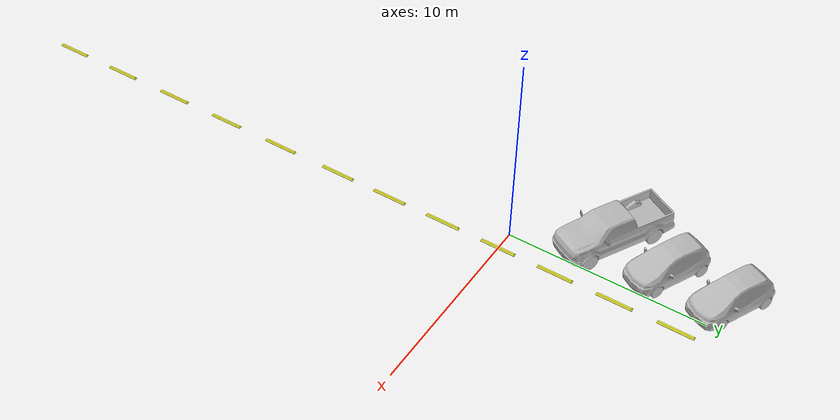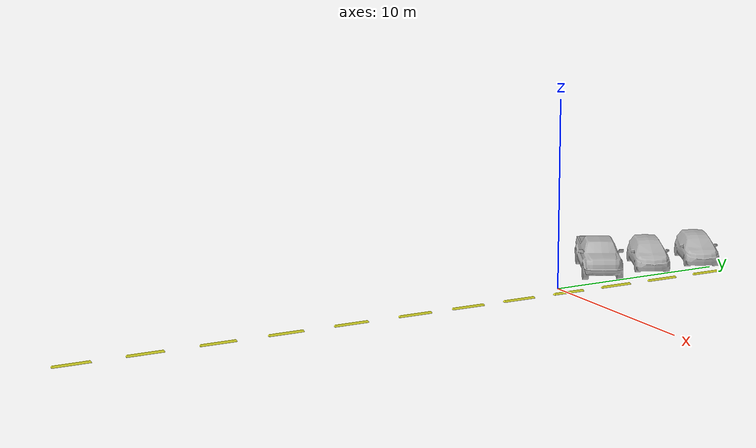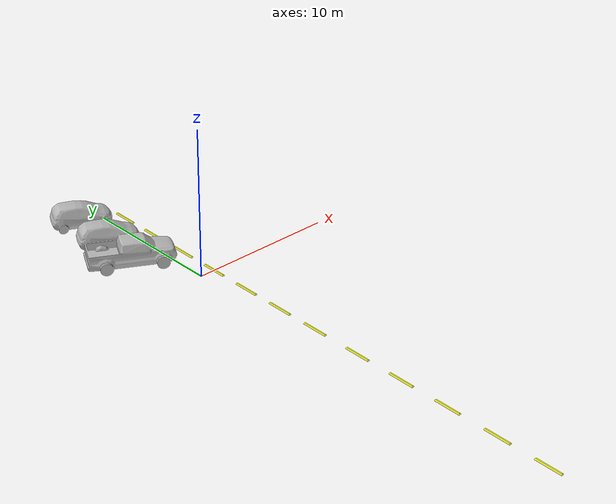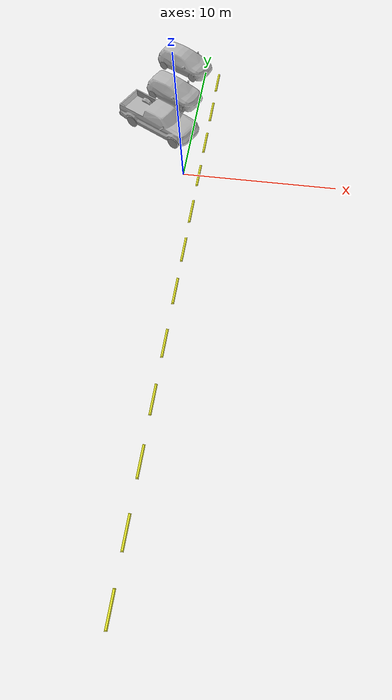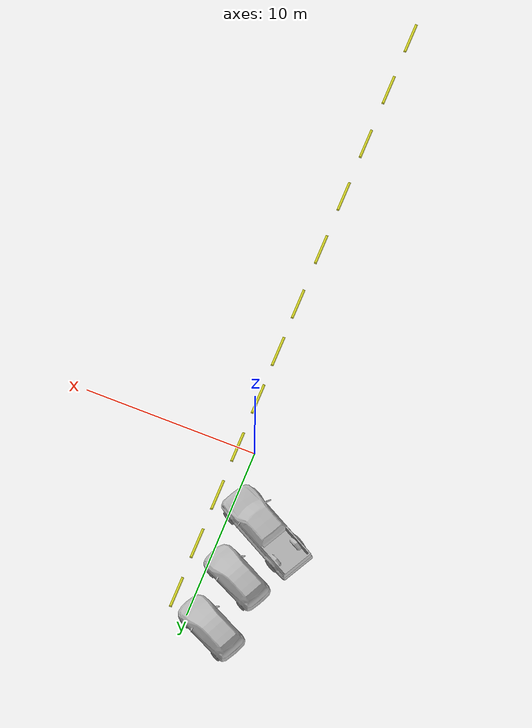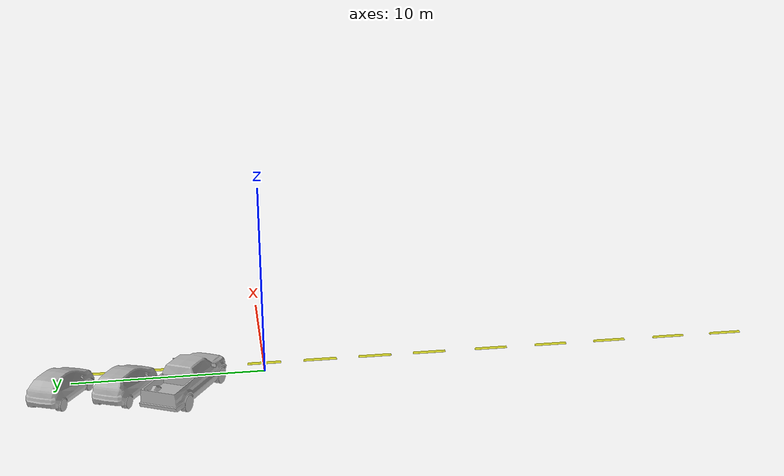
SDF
<?xml version='1.0'?>
<sdf version='1.7'>
  <model name='parking_version_11'>
    <model name='drc_practice_yellow_parking_block'>
      <static>1</static>
      <link name='link'>
        <visual name='visual'>
          <geometry>
            <mesh>
              <uri>model://drc_practice_yellow_parking_block/meshes/block.dae</uri>
            </mesh>
          </geometry>
        </visual>
        <collision name='collision'>
          <geometry>
            <mesh>
              <uri>model://drc_practice_yellow_parking_block/meshes/block.dae</uri>
            </mesh>
          </geometry>
          <max_contacts>10</max_contacts>
          <surface>
            <contact>
              <ode/>
            </contact>
            <bounce/>
            <friction>
              <torsional>
                <ode/>
              </torsional>
              <ode/>
            </friction>
          </surface>
        </collision>
        <self_collide>0</self_collide>
        <enable_wind>0</enable_wind>
        <kinematic>0</kinematic>
      </link>
      <pose>1.02328 -0.006969 0 0 -0 0</pose>
    </model>
    <model name='drc_practice_yellow_parking_block_clone'>
      <static>1</static>
      <link name='link'>
        <visual name='visual'>
          <geometry>
            <mesh>
              <uri>model://drc_practice_yellow_parking_block/meshes/block.dae</uri>
            </mesh>
          </geometry>
        </visual>
        <collision name='collision'>
          <geometry>
            <mesh>
              <uri>model://drc_practice_yellow_parking_block/meshes/block.dae</uri>
            </mesh>
          </geometry>
          <max_contacts>10</max_contacts>
          <surface>
            <contact>
              <ode/>
            </contact>
            <bounce/>
            <friction>
              <torsional>
                <ode/>
              </torsional>
              <ode/>
            </friction>
          </surface>
        </collision>
        <self_collide>0</self_collide>
        <enable_wind>0</enable_wind>
        <kinematic>0</kinematic>
      </link>
      <pose>1.01913 2.98237 0 0 -0 0</pose>
    </model>
    <model name='drc_practice_yellow_parking_block_clone_0'>
      <static>1</static>
      <link name='link'>
        <visual name='visual'>
          <geometry>
            <mesh>
              <uri>model://drc_practice_yellow_parking_block/meshes/block.dae</uri>
            </mesh>
          </geometry>
        </visual>
        <collision name='collision'>
          <geometry>
            <mesh>
              <uri>model://drc_practice_yellow_parking_block/meshes/block.dae</uri>
            </mesh>
          </geometry>
          <max_contacts>10</max_contacts>
          <surface>
            <contact>
              <ode/>
            </contact>
            <bounce/>
            <friction>
              <torsional>
                <ode/>
              </torsional>
              <ode/>
            </friction>
          </surface>
        </collision>
        <self_collide>0</self_collide>
        <enable_wind>0</enable_wind>
        <kinematic>0</kinematic>
      </link>
      <pose>1.02177 5.98349 0 0 -0 0</pose>
    </model>
    <model name='drc_practice_yellow_parking_block_clone_0_clone'>
      <static>1</static>
      <link name='link'>
        <visual name='visual'>
          <geometry>
            <mesh>
              <uri>model://drc_practice_yellow_parking_block/meshes/block.dae</uri>
            </mesh>
          </geometry>
        </visual>
        <collision name='collision'>
          <geometry>
            <mesh>
              <uri>model://drc_practice_yellow_parking_block/meshes/block.dae</uri>
            </mesh>
          </geometry>
          <max_contacts>10</max_contacts>
          <surface>
            <contact>
              <ode/>
            </contact>
            <bounce/>
            <friction>
              <torsional>
                <ode/>
              </torsional>
              <ode/>
            </friction>
          </surface>
        </collision>
        <self_collide>0</self_collide>
        <enable_wind>0</enable_wind>
        <kinematic>0</kinematic>
      </link>
      <pose>1.01953 8.98566 0 0 -0 0</pose>
    </model>
    <model name='drc_practice_yellow_parking_block_clone_1'>
      <static>1</static>
      <link name='link'>
        <visual name='visual'>
          <geometry>
            <mesh>
              <uri>model://drc_practice_yellow_parking_block/meshes/block.dae</uri>
            </mesh>
          </geometry>
        </visual>
        <collision name='collision'>
          <geometry>
            <mesh>
              <uri>model://drc_practice_yellow_parking_block/meshes/block.dae</uri>
            </mesh>
          </geometry>
          <max_contacts>10</max_contacts>
          <surface>
            <contact>
              <ode/>
            </contact>
            <bounce/>
            <friction>
              <torsional>
                <ode/>
              </torsional>
              <ode/>
            </friction>
          </surface>
        </collision>
        <self_collide>0</self_collide>
        <enable_wind>0</enable_wind>
        <kinematic>0</kinematic>
      </link>
      <pose>1.01589 -3.02167 0 0 -0 0</pose>
    </model>
    <model name='drc_practice_yellow_parking_block_clone_1_clone'>
      <static>1</static>
      <link name='link'>
        <visual name='visual'>
          <geometry>
            <mesh>
              <uri>model://drc_practice_yellow_parking_block/meshes/block.dae</uri>
            </mesh>
          </geometry>
        </visual>
        <collision name='collision'>
          <geometry>
            <mesh>
              <uri>model://drc_practice_yellow_parking_block/meshes/block.dae</uri>
            </mesh>
          </geometry>
          <max_contacts>10</max_contacts>
          <surface>
            <contact>
              <ode/>
            </contact>
            <bounce/>
            <friction>
              <torsional>
                <ode/>
              </torsional>
              <ode/>
            </friction>
          </surface>
        </collision>
        <self_collide>0</self_collide>
        <enable_wind>0</enable_wind>
        <kinematic>0</kinematic>
      </link>
      <pose>1.02016 -6.02039 0 0 -0 0</pose>
    </model>
    <model name='drc_practice_yellow_parking_block_clone_1_clone_clone'>
      <static>1</static>
      <link name='link'>
        <visual name='visual'>
          <geometry>
            <mesh>
              <uri>model://drc_practice_yellow_parking_block/meshes/block.dae</uri>
            </mesh>
          </geometry>
        </visual>
        <collision name='collision'>
          <geometry>
            <mesh>
              <uri>model://drc_practice_yellow_parking_block/meshes/block.dae</uri>
            </mesh>
          </geometry>
          <max_contacts>10</max_contacts>
          <surface>
            <contact>
              <ode/>
            </contact>
            <bounce/>
            <friction>
              <torsional>
                <ode/>
              </torsional>
              <ode/>
            </friction>
          </surface>
        </collision>
        <self_collide>0</self_collide>
        <enable_wind>0</enable_wind>
        <kinematic>0</kinematic>
      </link>
      <pose>1.0203 -9.02934 0 0 -0 0</pose>
    </model>
    <model name='drc_practice_yellow_parking_block_clone_1_clone_clone_clone'>
      <static>1</static>
      <link name='link'>
        <visual name='visual'>
          <geometry>
            <mesh>
              <uri>model://drc_practice_yellow_parking_block/meshes/block.dae</uri>
            </mesh>
          </geometry>
        </visual>
        <collision name='collision'>
          <geometry>
            <mesh>
              <uri>model://drc_practice_yellow_parking_block/meshes/block.dae</uri>
            </mesh>
          </geometry>
          <max_contacts>10</max_contacts>
          <surface>
            <contact>
              <ode/>
            </contact>
            <bounce/>
            <friction>
              <torsional>
                <ode/>
              </torsional>
              <ode/>
            </friction>
          </surface>
        </collision>
        <self_collide>0</self_collide>
        <enable_wind>0</enable_wind>
        <kinematic>0</kinematic>
      </link>
      <pose>1.01537 -12.5116 0 0 -0 0</pose>
    </model>
    <model name='drc_practice_yellow_parking_block_clone_1_clone_clone_clone_clone'>
      <static>1</static>
      <link name='link'>
        <visual name='visual'>
          <geometry>
            <mesh>
              <uri>model://drc_practice_yellow_parking_block/meshes/block.dae</uri>
            </mesh>
          </geometry>
        </visual>
        <collision name='collision'>
          <geometry>
            <mesh>
              <uri>model://drc_practice_yellow_parking_block/meshes/block.dae</uri>
            </mesh>
          </geometry>
          <max_contacts>10</max_contacts>
          <surface>
            <contact>
              <ode/>
            </contact>
            <bounce/>
            <friction>
              <torsional>
                <ode/>
              </torsional>
              <ode/>
            </friction>
          </surface>
        </collision>
        <self_collide>0</self_collide>
        <enable_wind>0</enable_wind>
        <kinematic>0</kinematic>
      </link>
      <pose>1.01073 -15.9268 0 0 -0 0</pose>
    </model>
    <model name='drc_practice_yellow_parking_block_clone_1_clone_clone_clone_clone_0_clone_clone'>
      <static>1</static>
      <link name='link'>
        <visual name='visual'>
          <geometry>
            <mesh>
              <uri>model://drc_practice_yellow_parking_block/meshes/block.dae</uri>
            </mesh>
          </geometry>
        </visual>
        <collision name='collision'>
          <geometry>
            <mesh>
              <uri>model://drc_practice_yellow_parking_block/meshes/block.dae</uri>
            </mesh>
          </geometry>
          <max_contacts>10</max_contacts>
          <surface>
            <contact>
              <ode/>
            </contact>
            <bounce/>
            <friction>
              <torsional>
                <ode/>
              </torsional>
              <ode/>
            </friction>
          </surface>
        </collision>
        <self_collide>0</self_collide>
        <enable_wind>0</enable_wind>
        <kinematic>0</kinematic>
      </link>
      <pose>1.00773 -22.8337 0 0 -0 0</pose>
    </model>
    <model name='drc_practice_yellow_parking_block_clone_1_clone_clone_clone_clone_0_clone_clone_clone_clone'>
      <static>1</static>
      <link name='link'>
        <visual name='visual'>
          <geometry>
            <mesh>
              <uri>model://drc_practice_yellow_parking_block/meshes/block.dae</uri>
            </mesh>
          </geometry>
        </visual>
        <collision name='collision'>
          <geometry>
            <mesh>
              <uri>model://drc_practice_yellow_parking_block/meshes/block.dae</uri>
            </mesh>
          </geometry>
          <max_contacts>10</max_contacts>
          <surface>
            <contact>
              <ode/>
            </contact>
            <bounce/>
            <friction>
              <torsional>
                <ode/>
              </torsional>
              <ode/>
            </friction>
          </surface>
        </collision>
        <self_collide>0</self_collide>
        <enable_wind>0</enable_wind>
        <kinematic>0</kinematic>
      </link>
      <pose>0.998376 -26.2323 0 0 -0 0</pose>
    </model>
    <model name='drc_practice_yellow_parking_block_clone_1_clone_clone_clone_clone_clone'>
      <static>1</static>
      <link name='link'>
        <visual name='visual'>
          <geometry>
            <mesh>
              <uri>model://drc_practice_yellow_parking_block/meshes/block.dae</uri>
            </mesh>
          </geometry>
        </visual>
        <collision name='collision'>
          <geometry>
            <mesh>
              <uri>model://drc_practice_yellow_parking_block/meshes/block.dae</uri>
            </mesh>
          </geometry>
          <max_contacts>10</max_contacts>
          <surface>
            <contact>
              <ode/>
            </contact>
            <bounce/>
            <friction>
              <torsional>
                <ode/>
              </torsional>
              <ode/>
            </friction>
          </surface>
        </collision>
        <self_collide>0</self_collide>
        <enable_wind>0</enable_wind>
        <kinematic>0</kinematic>
      </link>
      <pose>1.01303 -19.3338 0 0 -0 0</pose>
    </model>
    <model name='hatchback_blue'>
      <static>1</static>
      <link name='link'>
        <collision name='collision'>
          <pose>0 0 0 0 -0 1.5708</pose>
          <geometry>
            <mesh>
              <scale>0.0254 0.0254 0.0254</scale>
              <uri>model://hatchback_blue/meshes/hatchback.obj</uri>
            </mesh>
          </geometry>
          <max_contacts>10</max_contacts>
          <surface>
            <contact>
              <ode/>
            </contact>
            <bounce/>
            <friction>
              <torsional>
                <ode/>
              </torsional>
              <ode/>
            </friction>
          </surface>
        </collision>
        <visual name='visual'>
          <pose>0 0 0 0 -0 1.5708</pose>
          <geometry>
            <mesh>
              <scale>0.0254 0.0254 0.0254</scale>
              <uri>model://hatchback_blue/meshes/hatchback.obj</uri>
            </mesh>
          </geometry>
        </visual>
        <self_collide>0</self_collide>
        <enable_wind>0</enable_wind>
        <kinematic>0</kinematic>
      </link>
      <pose>-2.08551 7.25834 0 0 0 -0.457314</pose>
    </model>
    <model name='hatchback_red'>
      <static>1</static>
      <link name='link'>
        <collision name='collision'>
          <pose>0 0 0 0 -0 1.5708</pose>
          <geometry>
            <mesh>
              <scale>0.0254 0.0254 0.0254</scale>
              <uri>model://hatchback_red/meshes/hatchback.obj</uri>
            </mesh>
          </geometry>
          <max_contacts>10</max_contacts>
          <surface>
            <contact>
              <ode/>
            </contact>
            <bounce/>
            <friction>
              <torsional>
                <ode/>
              </torsional>
              <ode/>
            </friction>
          </surface>
        </collision>
        <visual name='visual'>
          <pose>0 0 0 0 -0 1.5708</pose>
          <geometry>
            <mesh>
              <scale>0.0254 0.0254 0.0254</scale>
              <uri>model://hatchback_red/meshes/hatchback.obj</uri>
            </mesh>
          </geometry>
        </visual>
        <self_collide>0</self_collide>
        <enable_wind>0</enable_wind>
        <kinematic>0</kinematic>
      </link>
      <pose>-1.86241 10.441 0 0 0 -0.447272</pose>
    </model>
    <model name='pickup'>
      <static>1</static>
      <link name='link'>
        <collision name='collision'>
          <pose>0 0 0 0 0 -1.5708</pose>
          <geometry>
            <mesh>
              <uri>model://pickup/meshes/pickup.dae</uri>
            </mesh>
          </geometry>
          <max_contacts>10</max_contacts>
          <surface>
            <contact>
              <ode/>
            </contact>
            <bounce/>
            <friction>
              <torsional>
                <ode/>
              </torsional>
              <ode/>
            </friction>
          </surface>
        </collision>
        <visual name='visual'>
          <pose>0 0 0 0 0 -1.5708</pose>
          <geometry>
            <mesh>
              <uri>model://pickup/meshes/pickup.dae</uri>
            </mesh>
          </geometry>
        </visual>
        <self_collide>0</self_collide>
        <enable_wind>0</enable_wind>
        <kinematic>0</kinematic>
      </link>
      <pose>-2.16575 4.04979 0 0 0 -0.490034</pose>
    </model>
    <static>1</static>
    <allow_auto_disable>1</allow_auto_disable>
  </model>
</sdf>
